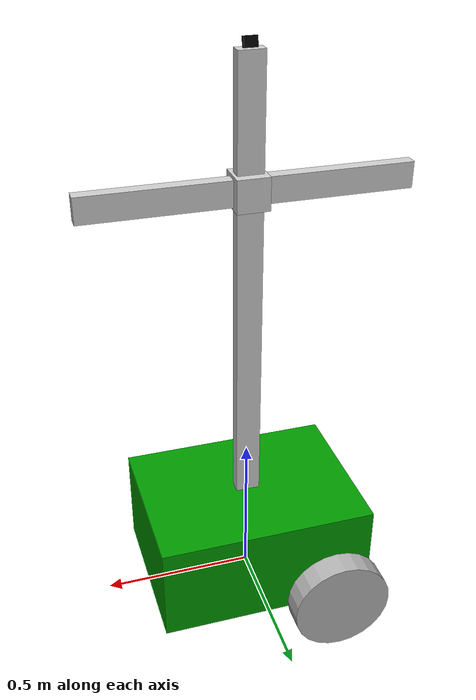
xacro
<?xml version="1.0"?>
<robot name="my_robot" xmlns:xacro="http://www.ros.org/wiki/xacro">

    <!-- use_sim:=true switches wheel joints to 'continuous' and adds Gazebo plugins -->
    <xacro:arg name="use_sim" default="false"/>
    <xacro:property name="sim_mode" value="$(arg use_sim)"/>

    <xacro:include filename="$(find robot_description)/urdf/common_properties.xacro" />
    <xacro:include filename="$(find robot_description)/urdf/mobile_base.xacro" />

    <!-- Gazebo (only when building for simulation) -->
    <xacro:if value="${sim_mode}">
        <xacro:include filename="$(find robot_description)/urdf/gazebo_properties.xacro" />
    </xacro:if>

</robot>

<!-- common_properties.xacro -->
<robot xmlns:xacro="http://www.ros.org/wiki/xacro">

    <material name="green">
        <color rgba="0 0.6 0 1" />
    </material>

  <material name="silver">
    <color rgba="0.8 0.8 0.8 1.0"/>
  </material>
    <material name="gray">
        <color rgba="0.7 0.7 0.7 1" />
    </material>

    <material name = "black">
        <color rgba="0 0 0 1"/>
    </material>

    <xacro:macro name="box_inertia" params="m x y z o_xyz o_rpy">
        <inertial>
            <mass value="${m}" />
            <origin xyz="${o_xyz}" rpy="${o_rpy}" />
            <inertia ixx="${(m/12) * (z*z + y*y)}" ixy="0" ixz="0"
                    iyy="${(m/12) * (x*x + z*z)}" iyz="0"
                    izz="${(m/12) * (x*x + y*y)}" />
        </inertial>
    </xacro:macro>

    <xacro:macro name="cylinder_inertia" params="m r l o_xyz o_rpy">
        <inertial>
            <origin xyz="${o_xyz}" rpy="${o_rpy}" />
            <mass value="${m}"/>
            <inertia ixx="${(m/12) * (3*r*r + l*l)}" ixy="0" ixz="0"
                    iyy="${(m/12) * (3*r*r + l*l)}" iyz="0"
                    izz="${(m/2) * (r*r)}" />
        </inertial>
    </xacro:macro>

    <xacro:macro name="sphere_inertia" params="m r o_xyz o_rpy">
        <inertial>
            <mass value="${m}" />
            <origin xyz="${o_xyz}" rpy="${o_rpy}" />
            <inertia ixx="${(2/5) * m * r * r}" ixy="0" ixz="0"
                    iyy="${(2/5) * m * r * r}" iyz="0"
                    izz="${(2/5) * m * r * r}" />
        </inertial>
    </xacro:macro>

    <xacro:macro name="camera" params="width height hfov color">

    <visual>
        <geometry>
            <box size="0.015 0.040 0.030" />
        </geometry>
        <material name="${color}" />
        <origin xyz="0 0 0" rpy="0 0 0" />
    </visual>
    <visual>
        <geometry>
            <cylinder radius="0.010" length="0.015"/>
        </geometry>
        <material name="green" />
        <origin xyz="0.0075 0 0" rpy="0 ${pi / 2.0} 0" />
    </visual>
    <mass value = "0.1" />
        <inertia ixx="0.000166667" iyy = "0.000166667" izz="0.000166667" />
    </xacro:macro>

   <xacro:macro name="wheel_link" params="prefix">
        <link name="${prefix}_wheel_link">
            <visual>
                <geometry>
                    <cylinder radius="${wheel_radius}" length="${wheel_length}" />
                </geometry>
                <origin xyz="0 0 0" rpy="${pi / 2.0} 0 0" />
                <material name="gray" />
            </visual>
            <collision>
                <geometry>
                    <sphere radius="${wheel_radius}"/>
                </geometry>
                <origin xyz="0 0 0" rpy="${pi / 2.0} 0 0" />
            </collision>
            <fdir1 value="1 0 0"/>
            <xacro:sphere_inertia m="0.01" r="${wheel_radius}"
                                    o_xyz="0 0 0" o_rpy="${pi / 2.0} 0 0" />
        </link>

    </xacro:macro>

    <xacro:macro name = "wheel_joint" params = "child_prefix xyz xyz_axis rpy joint_type:=fixed">
        <joint name="base_${child_prefix}_wheel_joint" type="${joint_type}">
            <parent link="base_link" />
            <child link="${child_prefix}_wheel_link" />
            <origin xyz="${xyz}" rpy="${rpy}" />
            <axis xyz="${xyz_axis}" />
        </joint>

    </xacro:macro>

<xacro:macro name="robo_link" params="name radius length material mass">

  <link name="${name}">
      <visual>
        <geometry>
          <cylinder length="${length}" radius="${radius}"/>
        </geometry>
          <origin xyz="0.0 0.0 ${length/2}" rpy="0.0 0.0 0.0"/>
        <material name="${material}"/>
      </visual>
      <collision>
          <geometry>
              <cylinder length="${length}" radius="${radius}"/>
          </geometry>
          <origin xyz="0.0 0.0 ${length/2}" rpy="0.0 0.0 0.0"/>
      </collision>
      <inertial>
          <mass value="${mass}" />
          <origin xyz="0 0 0" rpy="0 0 0" />
          <inertia ixx="${(mass/12) * (3*radius*radius + length*length)}" ixy="0" ixz="0"
                  iyy="${(mass/12) * (3*radius*radius + length*length)}" iyz="0"
                  izz="${(mass/2) * (radius*radius)}" />
      </inertial>
    </link>
</xacro:macro>

<xacro:macro name = "box_link" params = "name sx sy sz material mass">

  <link name="${name}">
    <visual>
      <geometry>
        <mesh filename="file://$(find antr_description)/stl/excavator.stl" scale="0.001 0.001 0.001"/>
      </geometry>
      <origin xyz="0.0 0.0 0.0" rpy="0.0 0.0 0.0"/>
      <material name="${material}"/>
    </visual>
    <collision>
      <geometry>
        <box size="${sx} ${sy} ${sz}"/>
      </geometry>
      <origin xyz="0.0 0.0 0.0" rpy="0.0 0.0 0.0"/>
    </collision>

  <inertial>
  <mass value="${mass}"/>
  <origin xyz="0 0 0" rpy="0 0 0" />
  <inertia ixx="${mass*(sy*sy + sz* sz)/12}" ixy="0.0" ixz="0.0" iyy="${mass*(sx*sx + sz* sz)/12}" iyz="0.0" izz="${mass*(sy*sy + sx* sx)/12}"/>
  </inertial>
  </link>
</xacro:macro>

<xacro:macro name="ros2_control_joint" params = "name mi ma">
  <joint name="${name}">

        <command_interface name = "position">
            <param name="min" value="${mi}"/>
            <param name="max" value="${ma}"/>
        </command_interface>

        <state_interface name = "velocity" />
        <state_interface name = "position"/>
    </joint>
</xacro:macro>

</robot>

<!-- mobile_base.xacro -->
<robot xmlns:xacro="http://www.ros.org/wiki/xacro">

    <xacro:property name="base_length" value="0.72" />
    <xacro:property name="base_width" value="0.54" />
    <xacro:property name="base_height" value="0.34" />
    <xacro:property name="wheel_radius" value="0.1687" />
    <xacro:property name="wheel_length" value="0.083" />

    <xacro:property name="al_profile_width" value="0.08" />
    <xacro:property name="al_profile_depth" value="0.04" />
    <xacro:property name="al_profile_height" value="1.45" />

    <xacro:property name="al_profile2_length" value="1.0" />
    <xacro:property name="al_profile2_width" value="0.04" />
    <xacro:property name="al_profile2_depth" value="0.08" />

    <link name="base_footprint" />

    <link name="base_link">
        <visual>
            <geometry>
                <box size="${base_length} ${base_width} ${base_height}" />
            </geometry>
            <origin xyz="0 0 ${base_height / 2.0}" rpy="0 0 0" />
            <material name="green" />
        </visual>
        <collision>
            <geometry>
                <box size="${base_length} ${base_width} ${base_height}" />
            </geometry>
            <origin xyz="0 0 ${base_height / 2.0}" rpy="0 0 0" />
        </collision>
        <xacro:box_inertia m="2.5" x="${base_length}" y="${base_width}" z="${base_height}"
                           o_xyz="0 0 ${base_height / 2.0}" o_rpy="0 0 0" />
    </link>

    <link name="al_profile_link">
        <visual>
            <geometry>
                <box size="${al_profile_width} ${al_profile_depth} ${al_profile_height}" />
            </geometry>
            <origin xyz="0 0 ${al_profile_height/2.0}" rpy="0 0 0" />
            <material name="silver" />
        </visual>
        <collision>
            <geometry>
                <box size="${al_profile_width} ${al_profile_depth} ${al_profile_height}" />
            </geometry>
            <origin xyz="0 0 ${al_profile_height/2.0}" rpy="0 0 0" />
        </collision>
        <xacro:box_inertia m="5.0" x="${al_profile_width}" y="${al_profile_depth}" z="${al_profile_height}" o_xyz="0 0 ${al_profile_height/2.0}" o_rpy="0 0 0" />
    </link>

    <link name="al_profile_connector_link">
        <visual>
            <geometry>
                <box size="0.1 0.1 0.1" />
            </geometry>
            <origin xyz="0 0 ${al_profile_height/2.0}" rpy="0 0 0" />
            <material name="silver" />
        </visual>
        <collision>
            <geometry>
                <box size="0.1 0.1 0.1" />
            </geometry>
            <origin xyz="0 0 ${al_profile_height/2.0}" rpy="0 0 0" />
        </collision>
        <xacro:box_inertia m="0.1" x="0.1" y="0.1" z="0.1" o_xyz="0 0 ${al_profile_height/2.0}" o_rpy="0 0 0" />
    </link>

    <link name="al_profile2_link">
        <visual>
            <geometry>
                <box size="${al_profile2_length} ${al_profile2_width} ${al_profile2_depth}" />
            </geometry>
            <origin xyz="0 0 0" rpy="0 0 0" />
            <material name="silver" />
        </visual>
        <collision>
            <geometry>
                <box size="${al_profile2_length} ${al_profile2_width} ${al_profile2_depth}" />
            </geometry>
            <origin xyz="0 0 0" rpy="0 0 0" />
        </collision>
        <xacro:box_inertia m="0.1" x="${al_profile2_length}" y="${al_profile2_width}" z="${al_profile2_depth}" o_xyz="0 0 0" o_rpy="0 0 1.5708" />
    </link>

    <link name="camera_link">
        <visual>
            <geometry>
                <box size="0.015 0.040 0.030" />
            </geometry>
            <material name="black" />
            <origin xyz="0 0 0" rpy="0 0 0" />
        </visual>
        <visual>
            <geometry>
                <cylinder radius="0.010" length="0.015"/>
            </geometry>
            <material name="green" />
            <origin xyz="0.0075 0 0" rpy="0 ${pi / 2.0} 0" />
        </visual>
        <collision>
            <geometry>
                <box size="0.030 0.040 0.030" />
            </geometry>
            <origin xyz="0 0 0" rpy="0 0 0" />
        </collision>
        <xacro:box_inertia m="0.1" x="0.030" y="0.040" z="0.030"
                           o_xyz="0 0 0" o_rpy="0 0 0" />
    </link>

    <xacro:wheel_link prefix="right_back" />
    <xacro:wheel_link prefix="left_back" />

    <!-- In sim mode, wheels must be 'continuous' for Gazebo diff_drive plugin -->
    <xacro:property name="wheel_jt" value="${'continuous' if sim_mode else 'fixed'}" />

    <link name="caster_wheel">
        <visual>
            <geometry>
                <sphere radius="${wheel_radius/2.0 - 0.025}"/>
            </geometry>
        </visual>
        <collision>
            <geometry>
                <sphere radius="${wheel_radius/2.0 - 0.025}"/>
            </geometry>
        </collision>
        <xacro:sphere_inertia m="0.1" r="${wheel_radius/2.0 - 0.01}" o_xyz="0 0 0" o_rpy="0 0 0" />
    </link>

    <joint name="base_joint" type="fixed">
        <parent link="base_link" />
        <child link="base_footprint" />
        <origin xyz="0 0 ${-wheel_radius}" rpy="0 0 0" />
    </joint>

    <xacro:wheel_joint child_prefix = "left_back" xyz = "${(-base_length / 2.0)+0.123} ${(base_width + wheel_length) / 2.0 } 0.025" xyz_axis = "0 1 0" rpy = "0 0 0" joint_type="${wheel_jt}"/>
    <xacro:wheel_joint child_prefix = "right_back" xyz = "${(-base_length / 2.0)+0.123} ${-(base_width + wheel_length) / 2.0 } 0.025" xyz_axis = "0 1 0" rpy = "0 0 0" joint_type="${wheel_jt}"/>

    <joint name="caster_wheel_joint" type="fixed">
        <parent link="base_link"/>
        <child link="caster_wheel"/>
        <origin xyz="${base_length/2 - 0.09} 0 ${-wheel_radius/2}"/>
    </joint>

    <joint name="al_profile_joint" type="fixed">
        <parent link="base_link" />
        <child link="al_profile_link" />
        <origin xyz="0 0 ${base_height}" rpy="0 0 0" />
    </joint>

    <joint name="al_profile_connector_joint" type="prismatic">
        <parent link="al_profile_link" />
        <child link="al_profile_connector_link" />
        <origin xyz="0 0 ${base_height}" rpy="0 0 0" />
        <axis xyz="0 0 1" /> <limit lower="${-al_profile_height/2.0}" upper="${al_profile_height/2.0 - base_height - 0.1}" effort="100.0" velocity="0.5" />
    </joint>

    <joint name="al_profile2_joint" type="prismatic">
        <parent link="al_profile_connector_link" />
        <child link="al_profile2_link" />
        <origin xyz="0 0 ${al_profile_height/2.0}" rpy="0 0 0" />
        <axis xyz="1 0 0" /> <limit lower="${-al_profile2_length/2.0}" upper="${al_profile2_length/2.0}" effort="100.0" velocity="0.5" />
    </joint>

    <joint name="camera_joint" type="fixed">
        <parent link="al_profile_link" />
        <child link="camera_link" />
        <origin xyz="0 0 ${al_profile_height+0.015}" rpy="0 0.26179 -1.5708" />
    </joint>
</robot>
